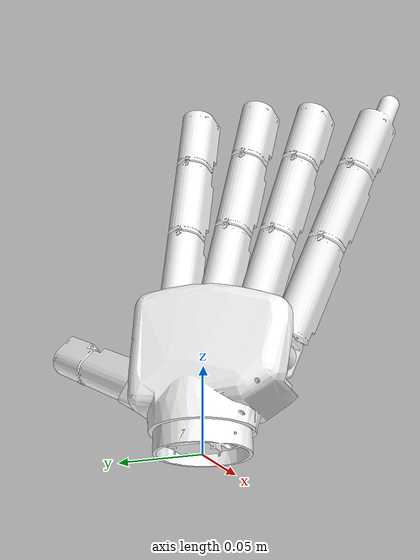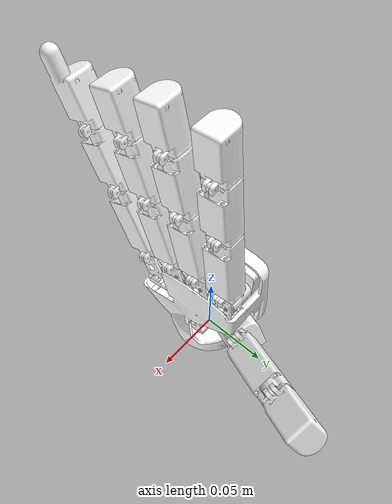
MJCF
<?xml version='1.0' encoding='utf-8'?>
<mujoco model="rh_daxian_v2_hand">
  <compiler angle="radian" meshdir="assets" autolimits="true" />
  <option impratio="20" timestep="0.005" />
  <default>
    <joint damping="0.05" armature="0.001" />
    <geom friction="1 0.005 0.001" condim="3" solimp="0.99 0.995 0.001" solref="0.004 1" />
    <position kp="20.0" />
  </default>
  <asset>
    <mesh name="rh_mesh_right_base_link" content_type="model/obj" file="right_base_link.obj" />
    <mesh name="rh_mesh_palm_link" content_type="model/obj" file="Right_hand_palm_link.obj" />
    <mesh name="rh_mesh_thumb_rota_link" content_type="model/obj" file="right_hand_thumb_rota_link.obj" />
    <mesh name="rh_mesh_thumb_swing_link" content_type="model/obj" file="right_hand_thumb_swing_link.obj" />
    <mesh name="rh_mesh_thumb_MCP_link" content_type="model/obj" file="right_hand_thumb_MCP_link.obj" />
    <mesh name="rh_mesh_thumb_PIP_link" content_type="model/obj" file="right_hand_thumb_PIP_link.obj" />
    <mesh name="rh_mesh_index_swing_link" content_type="model/obj" file="right_hand_index_swing_link.obj" />
    <mesh name="rh_mesh_index_MCP_link" content_type="model/obj" file="right_hand_index_MCP_link.obj" />
    <mesh name="rh_mesh_index_PIP_link" content_type="model/obj" file="right_hand_index_PIP_link.obj" />
    <mesh name="rh_mesh_index_DIP_link" content_type="model/obj" file="right_hand_index_DIP_link.obj" />
    <mesh name="rh_mesh_mid_swing_link" content_type="model/obj" file="right_hand_mid_swing_link.obj" />
    <mesh name="rh_mesh_mid_MCP_link" content_type="model/obj" file="right_hand_mid_MCP_link.obj" />
    <mesh name="rh_mesh_mid_PIP_link" content_type="model/obj" file="right_hand_mid_PIP_link.obj" />
    <mesh name="rh_mesh_mid_DIP_link" content_type="model/obj" file="right_hand_mid_DIP_link.obj" />
    <mesh name="rh_mesh_ring_swing_link" content_type="model/obj" file="right_hand_ring_swing_link.obj" />
    <mesh name="rh_mesh_ring_MCP_link" content_type="model/obj" file="right_hand_ring_MCP_link.obj" />
    <mesh name="rh_mesh_ring_PIP_link" content_type="model/obj" file="right_hand_ring_PIP_link.obj" />
    <mesh name="rh_mesh_ring_DIP_link" content_type="model/obj" file="right_hand_ring_DIP_link.obj" />
    <mesh name="rh_mesh_pinky_rota_link" content_type="model/obj" file="right_hand_pinky_rota_link.obj" />
    <mesh name="rh_mesh_pinky_swing_link" content_type="model/obj" file="right_hand_pinky_swing_link.obj" />
    <mesh name="rh_mesh_pinky_MCP_link" content_type="model/obj" file="right_hand_pinky_MCP_link.obj" />
    <mesh name="rh_mesh_pinky_PIP_link" content_type="model/obj" file="right_hand_pinky_PIP_link.obj" />
    <mesh name="rh_mesh_pinky_DIP_link" content_type="model/obj" file="right_hand_pinky_DIP_link.obj" />
  </asset>
  <worldbody>
    <body name="rh_forearm">
      <inertial pos="0 0 0" mass="0.5" diaginertia="0.001 0.001 0.001" />
      <geom type="mesh" rgba="0.79216 0.81961 0.93333 1" mesh="rh_mesh_right_base_link" contype="0" conaffinity="0" group="1" density="0" />
      <geom type="mesh" rgba="0.79216 0.81961 0.93333 1" mesh="rh_mesh_right_base_link" />
      <body name="rh_palm_link" pos="0.00439035 0 0.025">
        <geom type="mesh" rgba="1 1 1 1" mesh="rh_mesh_palm_link" contype="0" conaffinity="0" group="1" density="0" />
        <geom type="mesh" rgba="1 1 1 1" mesh="rh_mesh_palm_link" />
      </body>
      <body name="rh_thumb_rota_link" pos="0.00376018 0.0182864 0.0209075" quat="0.846394 -0.489737 0.183249 -0.100966">
        <inertial pos="-0.00378992 -0.00641722 0.024188" quat="0.954526 -0.0963051 0.135941 -0.247237" mass="0.0335342" diaginertia="3.51642e-06 3.00782e-06 1.97577e-06" />
        <joint name="rh_thumb_rota_joint" pos="0 0 0" axis="0 1 0" range="0 1.57" actuatorfrcrange="-0.344 0.344" damping="0.05" armature="0.001" />
        <geom type="mesh" rgba="1 1 1 1" mesh="rh_mesh_thumb_rota_link" contype="0" conaffinity="0" group="1" density="0" />
        <geom type="mesh" rgba="1 1 1 1" mesh="rh_mesh_thumb_rota_link" />
        <body name="rh_thumb_swing_link" pos="-0.0003 -0.00885 0.03775" quat="0.988826 0 0 0.149077">
          <inertial pos="-9.68744e-05 -0.00243574 0.00254115" quat="-0.164491 0.624937 -0.0331015 0.762431" mass="0.00333097" diaginertia="1.566e-07 1.29506e-07 5.38936e-08" />
          <joint name="rh_thumb_swing_joint" pos="0 0 0" axis="0 0 1" range="-1 1" actuatorfrcrange="-0.344 0.344" damping="0.05" armature="0.001" />
          <geom type="mesh" rgba="1 1 1 1" mesh="rh_mesh_thumb_swing_link" contype="0" conaffinity="0" group="1" density="0" />
          <geom type="mesh" rgba="1 1 1 1" mesh="rh_mesh_thumb_swing_link" />
          <body name="rh_thumb_MCP_link" pos="0 -0.012 0.0061">
            <inertial pos="1.00696e-06 0.0108 0.0307248" quat="0.699959 -0.00538623 -0.0062209 0.714136" mass="0.114715" diaginertia="3.00902e-05 2.96157e-05 7.66405e-06" />
            <joint name="rh_thumb_MCP_joint" pos="0 0 0" axis="1 0 0" range="0 1.57" actuatorfrcrange="-0.6 0.6" damping="0.05" armature="0.001" />
            <geom type="mesh" rgba="1 1 1 1" mesh="rh_mesh_thumb_MCP_link" contype="0" conaffinity="0" group="1" density="0" />
            <geom type="mesh" rgba="1 1 1 1" mesh="rh_mesh_thumb_MCP_link" />
            <body name="rh_thumb_PIP_link" pos="0 0 0.0585">
              <inertial pos="-1.73028e-07 0.0106536 0.018722" quat="0.691674 -0.0118424 -0.00844864 0.722064" mass="0.0548084" diaginertia="6.18048e-06 5.94129e-06 3.85823e-06" />
              <joint name="rh_thumb_PIP_joint" pos="0 0 0" axis="1 0 0" range="0 1.57" actuatorfrcrange="-0.33 0.33" damping="0.05" armature="0.001" />
              <geom type="mesh" rgba="1 1 1 1" mesh="rh_mesh_thumb_PIP_link" contype="0" conaffinity="0" group="1" density="0" />
              <geom type="mesh" rgba="1 1 1 1" mesh="rh_mesh_thumb_PIP_link" />
              <site name="rh_thumb_PIP_site" pos="0.0000 0.0184 0.0169" type="sphere" size="0.004" group="3" rgba="0.9 0.1 0.1 0.8" />
            </body>
          </body>
        </body>
      </body>
      <body name="rh_index_swing_link" pos="0.0156778 0.0232972 0.0678654" quat="0.998561 0.052944 0.000454021 0.00856314">
        <inertial pos="-0.00263209 -3.62269e-05 0.0051345" quat="0.912887 0.403219 -0.0634495 -0.00503238" mass="0.00371698" diaginertia="2.71735e-07 2.5522e-07 1.53045e-07" />
        <joint name="rh_index_swing_joint" pos="0 0 0" axis="-1 0 0" range="0 0.453786" actuatorfrcrange="-0.344 0.344" damping="0.05" armature="0.001" />
        <geom type="mesh" rgba="1 1 1 1" mesh="rh_mesh_index_swing_link" contype="0" conaffinity="0" group="1" density="0" />
        <geom type="mesh" rgba="1 1 1 1" mesh="rh_mesh_index_swing_link" />
        <body name="rh_index_MCP_link" pos="0.004 0 0.011354">
          <inertial pos="-0.010825 1.19104e-06 0.0301908" quat="0.699739 -0.00311819 -0.00337125 0.714384" mass="0.115273" diaginertia="2.99602e-05 2.94816e-05 7.67816e-06" />
          <joint name="rh_index_MCP_joint" pos="0 0 0" axis="0 1 0" range="0 1.57" actuatorfrcrange="-0.6 0.6" damping="0.05" armature="0.001" />
          <geom type="mesh" rgba="1 1 1 1" mesh="rh_mesh_index_MCP_link" contype="0" conaffinity="0" group="1" density="0" />
          <geom type="mesh" rgba="1 1 1 1" mesh="rh_mesh_index_MCP_link" />
          <body name="rh_index_PIP_link" pos="0 0 0.0585">
            <inertial pos="-0.0107986 -1.57776e-07 0.0246317" quat="0.697013 -0.00576111 -0.00633059 0.717007" mass="0.0863703" diaginertia="1.55003e-05 1.51525e-05 5.78726e-06" />
            <joint name="rh_index_PIP_joint" pos="0 0 0" axis="0 1 0" range="0 1.57" actuatorfrcrange="-0.48 0.48" damping="0.05" armature="0.001" />
            <geom type="mesh" rgba="1 1 1 1" mesh="rh_mesh_index_PIP_link" contype="0" conaffinity="0" group="1" density="0" />
            <geom type="mesh" rgba="1 1 1 1" mesh="rh_mesh_index_PIP_link" />
            <body name="rh_index_DIP_link" pos="0 0 0.0475">
              <inertial pos="-0.0105812 5.20909e-06 0.018677" quat="0.691284 -0.00752016 -0.00453928 0.72253" mass="0.0567466" diaginertia="6.48049e-06 6.25024e-06 3.91928e-06" />
              <joint name="rh_index_DIP_joint" pos="0 0 0" axis="0 1 0" range="0 1.57" actuatorfrcrange="-0.33 0.33" damping="0.05" armature="0.001" />
              <geom type="mesh" rgba="1 1 1 1" mesh="rh_mesh_index_DIP_link" contype="0" conaffinity="0" group="1" density="0" />
              <geom type="mesh" rgba="1 1 1 1" mesh="rh_mesh_index_DIP_link" />
              <site name="rh_index_DIP_site" pos="-0.0184 0.0000 0.0169" type="sphere" size="0.004" group="3" rgba="0.9 0.1 0.1 0.8" />
            </body>
          </body>
        </body>
      </body>
      <body name="rh_mid_swing_link" pos="0.0160529 0.00142551 0.0681" quat="0.993535 0.113199 0.000970737 0.00852005">
        <inertial pos="-0.00263209 -3.62271e-05 0.0051345" quat="0.912887 0.403219 -0.0634495 -0.00503238" mass="0.00371698" diaginertia="2.71735e-07 2.5522e-07 1.53045e-07" />
        <joint name="rh_mid_swing_joint" pos="0 0 0" axis="-1 0 0" range="0 0.453786" actuatorfrcrange="-0.344 0.344" damping="0.05" armature="0.001" />
        <geom type="mesh" rgba="1 1 1 1" mesh="rh_mesh_mid_swing_link" contype="0" conaffinity="0" group="1" density="0" />
        <geom type="mesh" rgba="1 1 1 1" mesh="rh_mesh_mid_swing_link" />
        <body name="rh_mid_MCP_link" pos="0.004 0 0.011354">
          <inertial pos="-0.010825 1.19104e-06 0.0301908" quat="0.699739 -0.00311819 -0.00337125 0.714384" mass="0.115273" diaginertia="2.99602e-05 2.94816e-05 7.67816e-06" />
          <joint name="rh_mid_MCP_joint" pos="0 0 0" axis="0 1 0" range="0 1.57" actuatorfrcrange="-0.6 0.6" damping="0.05" armature="0.001" />
          <geom type="mesh" rgba="1 1 1 1" mesh="rh_mesh_mid_MCP_link" contype="0" conaffinity="0" group="1" density="0" />
          <geom type="mesh" rgba="1 1 1 1" mesh="rh_mesh_mid_MCP_link" />
          <body name="rh_mid_PIP_link" pos="0 0 0.0585">
            <inertial pos="-0.0107986 -1.57769e-07 0.0246317" quat="0.697013 -0.00576111 -0.00633059 0.717007" mass="0.0863703" diaginertia="1.55003e-05 1.51525e-05 5.78726e-06" />
            <joint name="rh_mid_PIP_joint" pos="0 0 0" axis="0 1 0" range="0 1.57" actuatorfrcrange="-0.48 0.48" damping="0.05" armature="0.001" />
            <geom type="mesh" rgba="1 1 1 1" mesh="rh_mesh_mid_PIP_link" contype="0" conaffinity="0" group="1" density="0" />
            <geom type="mesh" rgba="1 1 1 1" mesh="rh_mesh_mid_PIP_link" />
            <body name="rh_mid_DIP_link" pos="0 0 0.0475">
              <inertial pos="-0.0105812 5.20908e-06 0.018677" quat="0.691284 -0.00752016 -0.00453928 0.72253" mass="0.0567466" diaginertia="6.48049e-06 6.25024e-06 3.91928e-06" />
              <joint name="rh_mid_DIP_joint" pos="0 0 0" axis="0 1 0" range="0 1.57" actuatorfrcrange="-0.33 0.33" damping="0.05" armature="0.001" />
              <geom type="mesh" rgba="1 1 1 1" mesh="rh_mesh_mid_DIP_link" contype="0" conaffinity="0" group="1" density="0" />
              <geom type="mesh" rgba="1 1 1 1" mesh="rh_mesh_mid_DIP_link" />
              <site name="rh_mid_DIP_site" pos="-0.0184 0.0000 0.0169" type="sphere" size="0.004" group="3" rgba="0.9 0.1 0.1 0.8" />
            </body>
          </body>
        </body>
      </body>
      <body name="rh_ring_swing_link" pos="0.016421 -0.020034 0.0620213" quat="0.987128 0.159703 0.00136953 0.0084651">
        <inertial pos="-0.00263209 -3.62268e-05 0.0051345" quat="0.912887 0.403219 -0.0634495 -0.00503238" mass="0.00371698" diaginertia="2.71735e-07 2.5522e-07 1.53045e-07" />
        <joint name="rh_ring_swing_joint" pos="0 0 0" axis="-1 0 0" range="0 0.453786" actuatorfrcrange="-0.344 0.344" damping="0.05" armature="0.001" />
        <geom type="mesh" rgba="1 1 1 1" mesh="rh_mesh_ring_swing_link" contype="0" conaffinity="0" group="1" density="0" />
        <geom type="mesh" rgba="1 1 1 1" mesh="rh_mesh_ring_swing_link" />
        <body name="rh_ring_MCP_link" pos="0.004 0 0.011354">
          <inertial pos="-0.010825 1.19104e-06 0.0301908" quat="0.699739 -0.00311819 -0.00337125 0.714384" mass="0.115273" diaginertia="2.99602e-05 2.94816e-05 7.67816e-06" />
          <joint name="rh_ring_MCP_joint" pos="0 0 0" axis="0 1 0" range="0 1.57" actuatorfrcrange="-0.6 0.6" damping="0.05" armature="0.001" />
          <geom type="mesh" rgba="1 1 1 1" mesh="rh_mesh_ring_MCP_link" contype="0" conaffinity="0" group="1" density="0" />
          <geom type="mesh" rgba="1 1 1 1" mesh="rh_mesh_ring_MCP_link" />
          <body name="rh_ring_PIP_link" pos="0 0 0.0585">
            <inertial pos="-0.0107986 -1.57771e-07 0.0246317" quat="0.697013 -0.00576111 -0.00633059 0.717007" mass="0.0863703" diaginertia="1.55003e-05 1.51525e-05 5.78726e-06" />
            <joint name="rh_ring_PIP_joint" pos="0 0 0" axis="0 1 0" range="0 1.57" actuatorfrcrange="-0.48 0.48" damping="0.05" armature="0.001" />
            <geom type="mesh" rgba="1 1 1 1" mesh="rh_mesh_ring_PIP_link" contype="0" conaffinity="0" group="1" density="0" />
            <geom type="mesh" rgba="1 1 1 1" mesh="rh_mesh_ring_PIP_link" />
            <body name="rh_ring_DIP_link" pos="0 0 0.0475">
              <inertial pos="-0.0105812 5.20907e-06 0.018677" quat="0.691284 -0.00752016 -0.00453928 0.72253" mass="0.0567466" diaginertia="6.48049e-06 6.25024e-06 3.91928e-06" />
              <joint name="rh_ring_DIP_joint" pos="0 0 0" axis="0 1 0" range="0 1.57" actuatorfrcrange="-0.33 0.33" damping="0.05" armature="0.001" />
              <geom type="mesh" rgba="1 1 1 1" mesh="rh_mesh_ring_DIP_link" contype="0" conaffinity="0" group="1" density="0" />
              <geom type="mesh" rgba="1 1 1 1" mesh="rh_mesh_ring_DIP_link" />
              <site name="rh_ring_DIP_site" pos="-0.0184 0.0000 0.0169" type="sphere" size="0.004" group="3" rgba="0.9 0.1 0.1 0.8" />
            </body>
          </body>
        </body>
      </body>
      <body name="rh_pinky_rota_link" pos="0.0104222 -0.0201563 0.0414407" quat="0.994951 0.100347 0.00170384 0.000171843">
        <inertial pos="-0.00386711 -0.0164524 0.0106881" quat="0.704374 0.0416487 -0.321202 0.631627" mass="0.0297318" diaginertia="2.91245e-06 2.64692e-06 1.79063e-06" />
        <geom type="mesh" rgba="1 1 1 1" mesh="rh_mesh_pinky_rota_link" contype="0" conaffinity="0" group="1" density="0" />
        <geom type="mesh" rgba="1 1 1 1" mesh="rh_mesh_pinky_rota_link" />
        <body name="rh_pinky_swing_link" pos="0.00591446 -0.0186632 0.0166" quat="0.993537 0.113199 0.000951186 0.00834845">
          <inertial pos="-0.00263209 -3.62268e-05 0.0051345" quat="0.912887 0.403219 -0.0634495 -0.00503238" mass="0.00371698" diaginertia="2.71735e-07 2.5522e-07 1.53045e-07" />
          <joint name="rh_pinky_swing_joint" pos="0 0 0" axis="-1 0 0" range="0 0.453786" actuatorfrcrange="-0.344 0.344" damping="0.05" armature="0.001" />
          <geom type="mesh" rgba="1 1 1 1" mesh="rh_mesh_pinky_swing_link" contype="0" conaffinity="0" group="1" density="0" />
          <geom type="mesh" rgba="1 1 1 1" mesh="rh_mesh_pinky_swing_link" />
          <body name="rh_pinky_MCP_link" pos="0.004 0 0.011354">
            <inertial pos="-0.010825 1.19104e-06 0.0301908" quat="0.699739 -0.00311819 -0.00337125 0.714384" mass="0.115273" diaginertia="2.99602e-05 2.94816e-05 7.67816e-06" />
            <joint name="rh_pinky_MCP_joint" pos="0 0 0" axis="0 1 0" range="0 1.57" actuatorfrcrange="-0.6 0.6" damping="0.05" armature="0.001" />
            <geom type="mesh" rgba="1 1 1 1" mesh="rh_mesh_pinky_MCP_link" contype="0" conaffinity="0" group="1" density="0" />
            <geom type="mesh" rgba="1 1 1 1" mesh="rh_mesh_pinky_MCP_link" />
            <body name="rh_pinky_PIP_link" pos="0 0 0.0585">
              <inertial pos="-0.0107986 -1.57771e-07 0.0246317" quat="0.697013 -0.00576111 -0.00633059 0.717007" mass="0.0863703" diaginertia="1.55003e-05 1.51525e-05 5.78726e-06" />
              <joint name="rh_pinky_PIP_joint" pos="0 0 0" axis="0 1 0" range="0 1.57" actuatorfrcrange="-0.48 0.48" damping="0.05" armature="0.001" />
              <geom type="mesh" rgba="1 1 1 1" mesh="rh_mesh_pinky_PIP_link" contype="0" conaffinity="0" group="1" density="0" />
              <geom type="mesh" rgba="1 1 1 1" mesh="rh_mesh_pinky_PIP_link" />
              <body name="rh_pinky_DIP_link" pos="0 0 0.0475">
                <inertial pos="-0.0105812 5.20905e-06 0.018677" quat="0.691284 -0.00752016 -0.00453928 0.72253" mass="0.0567466" diaginertia="6.48049e-06 6.25024e-06 3.91928e-06" />
                <joint name="rh_pinky_DIP_joint" pos="0 0 0" axis="0 1 0" range="0 1.57" actuatorfrcrange="-0.33 0.33" damping="0.05" armature="0.001" />
                <geom type="mesh" rgba="1 1 1 1" mesh="rh_mesh_pinky_DIP_link" contype="0" conaffinity="0" group="1" density="0" />
                <geom type="mesh" rgba="1 1 1 1" mesh="rh_mesh_pinky_DIP_link" />
                <site name="rh_pinky_DIP_site" pos="-0.0184 0.0000 0.0169" type="sphere" size="0.004" group="3" rgba="0.9 0.1 0.1 0.8" />
              </body>
            </body>
          </body>
        </body>
      </body>
    </body>
  </worldbody>
  <actuator>
    <position name="rh_A_thumb_rota_joint" joint="rh_thumb_rota_joint" ctrlrange="0.0 1.57" kp="20.0" />
    <position name="rh_A_thumb_swing_joint" joint="rh_thumb_swing_joint" ctrlrange="-1.0 1.0" kp="20.0" />
    <position name="rh_A_thumb_MCP_joint" joint="rh_thumb_MCP_joint" ctrlrange="0.0 1.57" kp="20.0" />
    <position name="rh_A_thumb_PIP_joint" joint="rh_thumb_PIP_joint" ctrlrange="0.0 1.57" kp="20.0" />
    <position name="rh_A_index_swing_joint" joint="rh_index_swing_joint" ctrlrange="0.0 0.453786" kp="20.0" />
    <position name="rh_A_index_MCP_joint" joint="rh_index_MCP_joint" ctrlrange="0.0 1.57" kp="20.0" />
    <position name="rh_A_index_PIP_joint" joint="rh_index_PIP_joint" ctrlrange="0.0 1.57" kp="20.0" />
    <position name="rh_A_index_DIP_joint" joint="rh_index_DIP_joint" ctrlrange="0.0 1.57" kp="20.0" />
    <position name="rh_A_mid_swing_joint" joint="rh_mid_swing_joint" ctrlrange="0.0 0.453786" kp="20.0" />
    <position name="rh_A_mid_MCP_joint" joint="rh_mid_MCP_joint" ctrlrange="0.0 1.57" kp="20.0" />
    <position name="rh_A_mid_PIP_joint" joint="rh_mid_PIP_joint" ctrlrange="0.0 1.57" kp="20.0" />
    <position name="rh_A_mid_DIP_joint" joint="rh_mid_DIP_joint" ctrlrange="0.0 1.57" kp="20.0" />
    <position name="rh_A_ring_swing_joint" joint="rh_ring_swing_joint" ctrlrange="0.0 0.453786" kp="20.0" />
    <position name="rh_A_ring_MCP_joint" joint="rh_ring_MCP_joint" ctrlrange="0.0 1.57" kp="20.0" />
    <position name="rh_A_ring_PIP_joint" joint="rh_ring_PIP_joint" ctrlrange="0.0 1.57" kp="20.0" />
    <position name="rh_A_ring_DIP_joint" joint="rh_ring_DIP_joint" ctrlrange="0.0 1.57" kp="20.0" />
    <position name="rh_A_pinky_swing_joint" joint="rh_pinky_swing_joint" ctrlrange="0.0 0.453786" kp="20.0" />
    <position name="rh_A_pinky_MCP_joint" joint="rh_pinky_MCP_joint" ctrlrange="0.0 1.57" kp="20.0" />
    <position name="rh_A_pinky_PIP_joint" joint="rh_pinky_PIP_joint" ctrlrange="0.0 1.57" kp="20.0" />
    <position name="rh_A_pinky_DIP_joint" joint="rh_pinky_DIP_joint" ctrlrange="0.0 1.57" kp="20.0" />
  </actuator>
</mujoco>
